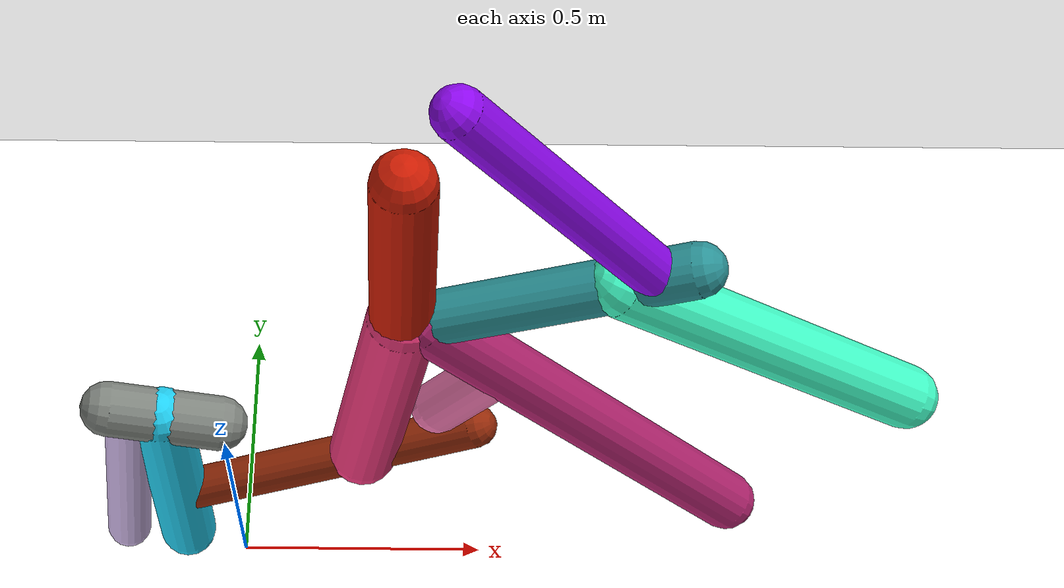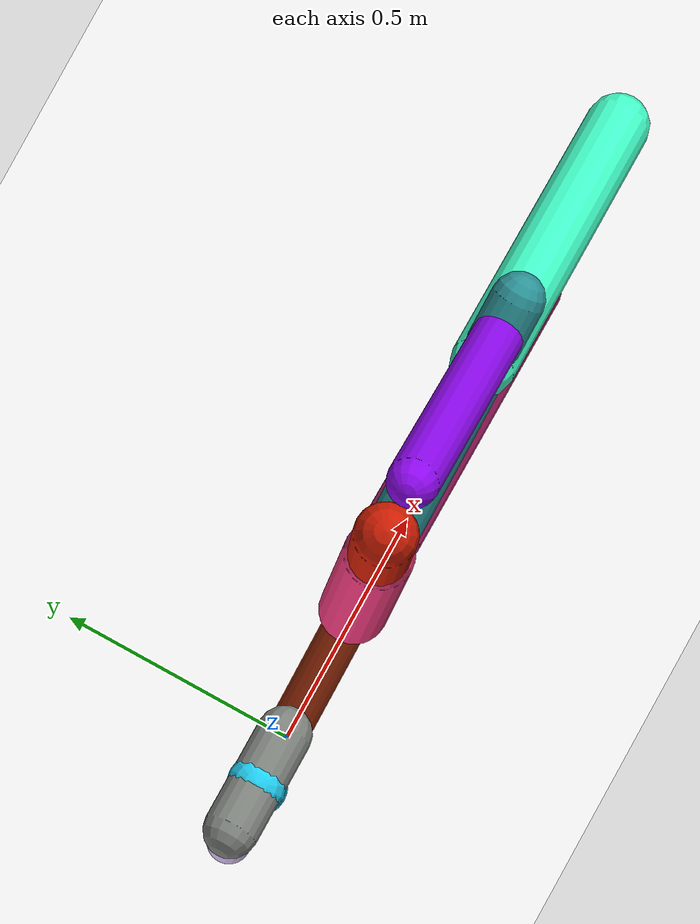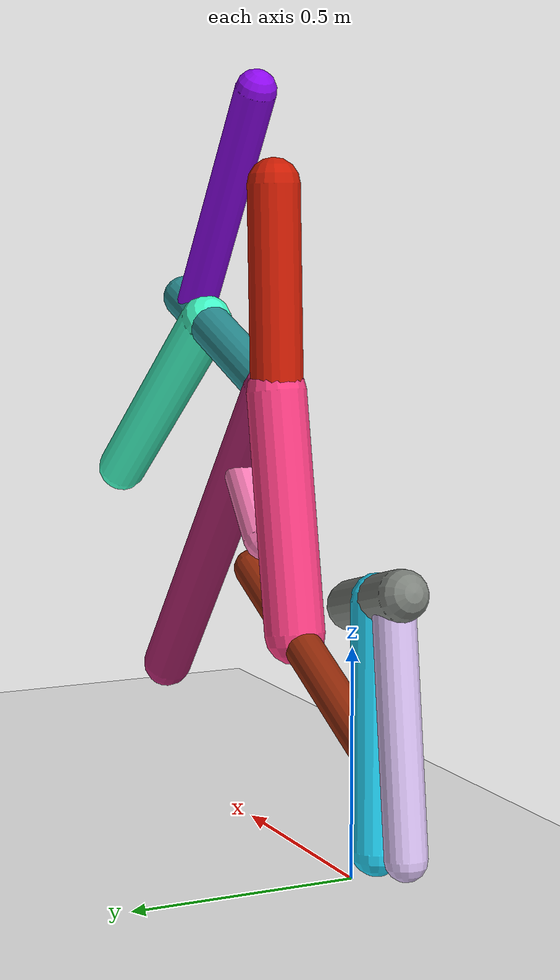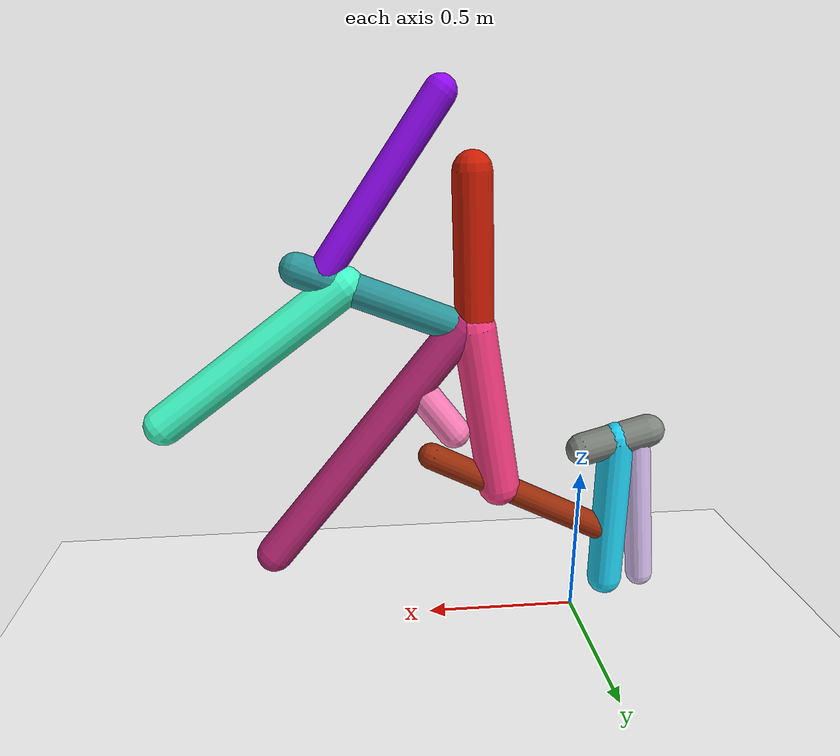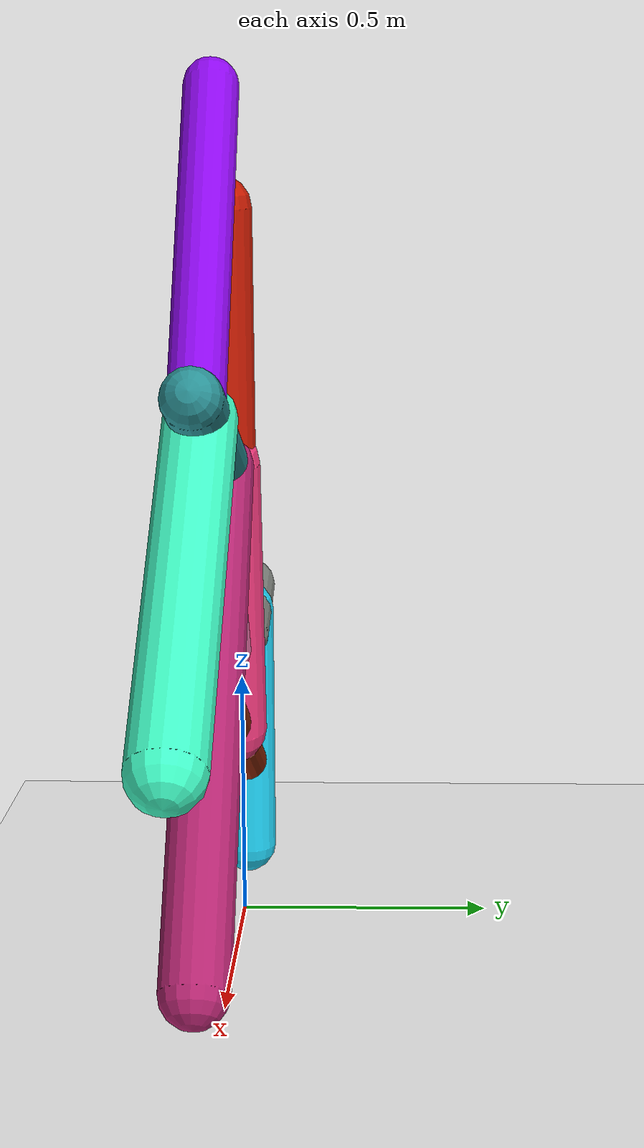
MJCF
<mujoco model="morphology">
  <option timestep="0.01"/>
  <default>
    <default class="/"/>
    <default class="0/"/>
    <default class="0/1/"/>
    <default class="0/2/"/>
    <default class="0/2/3/"/>
    <default class="0/2/3/4/"/>
    <default class="0/2/3/4/5/"/>
    <default class="0/2/3/4/6/"/>
    <default class="0/2/3/4/6/7/"/>
    <default class="0/2/3/4/6/8/"/>
    <default class="0/2/3/4/6/9/"/>
    <default class="0/2/3/4/6/9/10/"/>
  </default>
  <asset>
    <texture name="texplane" type="2d" builtin="checker" rgb1="0.10000000000000001 0.20000000000000001 0.29999999999999999" rgb2="0.20000000000000001 0.29999999999999999 0.40000000000000002" width="300" height="300"/>
    <material name="MatPlane" class="/" texture="texplane" texrepeat="20 20" specular="1" shininess="1" reflectance="0.5"/>
  </asset>
  <worldbody>
    <light name="//unnamed_light_0" class="/" directional="true" pos="0 0 1.5" dir="0 0 -1.3" cutoff="100" exponent="1" diffuse="1 1 1" specular="0.10000000000000001 0.10000000000000001 0.10000000000000001"/>
    <geom name="ground" class="/" type="plane" size="15 15 0.5" material="MatPlane" rgba="1 1 1 1"/>
    <site name="body" class="/" size="9.9999999999999995e-07 9.9999999999999995e-07 9.9999999999999995e-07" pos="0 0 0.59008223414421079"/>
    <body pos="0 0 0.59008223414421079" name="0/">
      <joint name="0/rootx/" class="/" type="slide" axis="1 0 0" limited="false" stiffness="0" armature="0" damping="0"/>
      <joint name="0/rootz/" class="/" type="slide" axis="0 0 1" limited="false" stiffness="0" armature="0" damping="0"/>
      <joint name="0/rooty/" class="/" type="hinge" axis="0 1 0" limited="false" stiffness="0" armature="0" damping="0"/>
      <geom name="0/geom" class="0/" type="capsule" contype="1" conaffinity="1" condim="3" size="0.05439879221625514" rgba="0.4978577154510232 0.5175931481227839 0.49442814713776151 1" friction="0.59999999999999998 0.10000000000000001 0.10000000000000001" fromto="0 0 0 -0.21179787036536135 0 0.057348541973957001"/>
      <site name="0/end0" class="0/" size="0.0050000000000000001" pos="-0.21179787036536135 0 0.057348541973957001"/>
      <site name="0/attach1" class="0/" size="9.9999999999999995e-07 9.9999999999999995e-07 9.9999999999999995e-07" pos="-0.1749782526602188 0 0.047378888418017594"/>
      <body pos="-0.1749782526602188 0 0.047378888418017594" name="0/1/">
        <joint name="0/1/joint/" class="0/" type="hinge" axis="0 1 0" limited="true" range="-46.68008261470797 46.68008261470797"/>
        <geom name="0/1/geom" class="0/1/" type="capsule" contype="1" conaffinity="1" condim="3" size="0.045160707131435079" rgba="0.84321357290336241 0.74760903871629514 0.94644064461166533 1" friction="0.59999999999999998 0.10000000000000001 0.10000000000000001" fromto="0 0 0 -0.063135824069716739 0 -0.52558585891062348"/>
        <site name="0/1/end1" class="0/1/" size="0.0050000000000000001" pos="-0.063135824069716739 0 -0.52558585891062348"/>
      </body>
      <site name="0/attach2" class="0/" size="9.9999999999999995e-07 9.9999999999999995e-07 9.9999999999999995e-07" pos="-0.1108444004934996 0 0.030013355390749879"/>
      <body pos="-0.1108444004934996 0 0.030013355390749879" name="0/2/">
        <geom name="0/2/geom" class="0/2/" type="capsule" contype="1" conaffinity="1" condim="3" size="0.057503516996352214" rgba="0.12849375006694708 0.81629648637665164 0.9514545120831821 1" friction="0.59999999999999998 0.10000000000000001 0.10000000000000001" fromto="0 0 0 -0.0031298385133868845 0 -0.52009557898347403"/>
        <site name="0/2/end2" class="0/2/" size="0.0050000000000000001" pos="-0.0031298385133868845 0 -0.52009557898347403"/>
        <site name="0/2/attach3" class="0/2/" size="9.9999999999999995e-07 9.9999999999999995e-07 9.9999999999999995e-07" pos="-0.0020426715071554832 0 -0.33943745520513807"/>
        <body pos="-0.0020426715071554832 0 -0.33943745520513807" name="0/2/3/">
          <joint name="0/2/3/joint/" class="0/2/" type="hinge" axis="0 1 0" limited="true" range="-36.798638878406784 36.798638878406784"/>
          <geom name="0/2/3/geom" class="0/2/3/" type="capsule" contype="1" conaffinity="1" condim="3" size="0.042772069256013318" rgba="0.59328941323530104 0.16818728966853902 0.039429864697982708 1" friction="0.59999999999999998 0.10000000000000001 0.10000000000000001" fromto="0 0 0 0.61123241217308433 0 0.30777798835995895"/>
          <site name="0/2/3/end3" class="0/2/3/" size="0.0050000000000000001" pos="0.61123241217308433 0 0.30777798835995895"/>
          <site name="0/2/3/attach4" class="0/2/3/" size="9.9999999999999995e-07 9.9999999999999995e-07 9.9999999999999995e-07" pos="0.38725922796476192 0 0.19499925688344202"/>
          <body pos="0.38725922796476192 0 0.19499925688344202" name="0/2/3/4/">
            <joint name="0/2/3/4/joint/" class="0/2/3/" type="hinge" axis="0 1 0" limited="true" range="-58.063390243085649 58.063390243085649"/>
            <geom name="0/2/3/4/geom" class="0/2/3/4/" type="capsule" contype="1" conaffinity="1" condim="3" size="0.068054264554038638" rgba="0.97534898312116702 0.2373120819498048 0.50835002124555517 1" friction="0.59999999999999998 0.10000000000000001 0.10000000000000001" fromto="0 0 0 0.096869229805626178 0 0.53032772847578125"/>
            <site name="0/2/3/4/end4" class="0/2/3/4/" size="0.0050000000000000001" pos="0.096869229805626178 0 0.53032772847578125"/>
            <site name="0/2/3/4/attach5" class="0/2/3/4/" size="9.9999999999999995e-07 9.9999999999999995e-07 9.9999999999999995e-07" pos="0.094322629546242764 0 0.51638591502681952"/>
            <body pos="0.094322629546242764 0 0.51638591502681952" name="0/2/3/4/5/">
              <joint name="0/2/3/4/5/joint/" class="0/2/3/4/" type="hinge" axis="0 1 0" limited="true" range="-63.15149105410562 63.15149105410562"/>
              <geom name="0/2/3/4/5/geom" class="0/2/3/4/5/" type="capsule" contype="1" conaffinity="1" condim="3" size="0.059809775176831455" rgba="0.80372659179714268 0.11277161069621378 0.015769652579262772 1" friction="0.59999999999999998 0.10000000000000001 0.10000000000000001" fromto="0 0 0 0.019631039706016984 0 0.47168114511419423"/>
              <site name="0/2/3/4/5/end5" class="0/2/3/4/5/" size="0.0050000000000000001" pos="0.019631039706016984 0 0.47168114511419423"/>
            </body>
            <site name="0/2/3/4/attach6" class="0/2/3/4/" size="9.9999999999999995e-07 9.9999999999999995e-07 9.9999999999999995e-07" pos="0.094457220255892871 0 0.51712275566719534"/>
            <body pos="0.094457220255892871 0 0.51712275566719534" name="0/2/3/4/6/">
              <joint name="0/2/3/4/6/joint/" class="0/2/3/4/" type="hinge" axis="0 1 0" limited="true" range="-48.217419555650579 48.217419555650579"/>
              <geom name="0/2/3/4/6/geom" class="0/2/3/4/6/" type="capsule" contype="1" conaffinity="1" condim="3" size="0.051200887657881444" rgba="0.16897343438477164 0.57575515601108185 0.59341849831494309 1" friction="0.59999999999999998 0.10000000000000001 0.10000000000000001" fromto="0 0 0 0.52540555390170773 0 0.20149504637377502"/>
              <site name="0/2/3/4/6/end6" class="0/2/3/4/6/" size="0.0050000000000000001" pos="0.52540555390170773 0 0.20149504637377502"/>
              <site name="0/2/3/4/6/attach7" class="0/2/3/4/6/" size="9.9999999999999995e-07 9.9999999999999995e-07 9.9999999999999995e-07" pos="0.45893600446375371 0 0.1760037190610263"/>
              <body pos="0.45893600446375371 0 0.1760037190610263" name="0/2/3/4/6/7/">
                <geom name="0/2/3/4/6/7/geom" class="0/2/3/4/6/7/" type="capsule" contype="1" conaffinity="1" condim="3" size="0.047975890357939671" rgba="0.55993788790664689 0.030918181652326071 0.93850057299159784 1" friction="0.59999999999999998 0.10000000000000001 0.10000000000000001" fromto="0 0 0 -0.34583703111789516 0 0.50319203303769999"/>
                <site name="0/2/3/4/6/7/end7" class="0/2/3/4/6/7/" size="0.0050000000000000001" pos="-0.34583703111789516 0 0.50319203303769999"/>
              </body>
              <site name="0/2/3/4/6/attach8" class="0/2/3/4/6/" size="9.9999999999999995e-07 9.9999999999999995e-07 9.9999999999999995e-07" pos="0.39234894579105523 0 0.15046732650576469"/>
              <body pos="0.39234894579105523 0 0.15046732650576469" name="0/2/3/4/6/8/">
                <joint name="0/2/3/4/6/8/joint/" class="0/2/3/4/6/" type="hinge" axis="0 1 0" limited="true" range="-68.167670074690179 68.167670074690179"/>
                <geom name="0/2/3/4/6/8/geom" class="0/2/3/4/6/8/" type="capsule" contype="1" conaffinity="1" condim="3" size="0.061813735991877262" rgba="0.25715299649482726 0.99486395393294103 0.7829345149191197 1" friction="0.59999999999999998 0.10000000000000001 0.10000000000000001" fromto="0 0 0 0.5569929307629875 0 -0.41582308309380372"/>
                <site name="0/2/3/4/6/8/end8" class="0/2/3/4/6/8/" size="0.0050000000000000001" pos="0.5569929307629875 0 -0.41582308309380372"/>
              </body>
              <site name="0/2/3/4/6/attach9" class="0/2/3/4/6/" size="9.9999999999999995e-07 9.9999999999999995e-07 9.9999999999999995e-07" pos="0.040409055779708707 0 0.015497027977317701"/>
              <body pos="0.040409055779708707 0 0.015497027977317701" name="0/2/3/4/6/9/">
                <geom name="0/2/3/4/6/9/geom" class="0/2/3/4/6/9/" type="capsule" contype="1" conaffinity="1" condim="3" size="0.059533808512552175" rgba="0.71147327955850592 0.14669198253973159 0.44413149320858603 1" friction="0.59999999999999998 0.10000000000000001 0.10000000000000001" fromto="0 0 0 0.60318991465670568 0 -0.74666697950009864"/>
                <site name="0/2/3/4/6/9/end9" class="0/2/3/4/6/9/" size="0.0050000000000000001" pos="0.60318991465670568 0 -0.74666697950009864"/>
                <site name="0/2/3/4/6/9/attach10" class="0/2/3/4/6/9/" size="9.9999999999999995e-07 9.9999999999999995e-07 9.9999999999999995e-07" pos="0.14258613682081203 0 -0.17650222179058767"/>
                <body pos="0.14258613682081203 0 -0.17650222179058767" name="0/2/3/4/6/9/10/">
                  <joint name="0/2/3/4/6/9/10/joint/" class="0/2/3/4/6/9/" type="hinge" axis="0 1 0" limited="true" range="-59.473255183168483 59.473255183168483"/>
                  <geom name="0/2/3/4/6/9/10/geom" class="0/2/3/4/6/9/10/" type="capsule" contype="1" conaffinity="1" condim="3" size="0.051961030815009607" rgba="0.99986170274809993 0.50105662462313272 0.73263998574952149 1" friction="0.59999999999999998 0.10000000000000001 0.10000000000000001" fromto="0 0 0 -0.12495920757879497 0 -0.16259603530196054"/>
                  <site name="0/2/3/4/6/9/10/end10" class="0/2/3/4/6/9/10/" size="0.0050000000000000001" pos="-0.12495920757879497 0 -0.16259603530196054"/>
                </body>
              </body>
            </body>
          </body>
        </body>
      </body>
      <camera name="0/side" class="0/" mode="trackcom" pos="0.40000000000000002 -4 0.20000000000000001" quat="0.70699999999999996 0.70699999999999996 0 0"/>
    </body>
  </worldbody>
  <actuator>
    <motor name="0/1/motor" class="0/1/" ctrllimited="true" ctrlrange="-1 1" gear="68" joint="0/1/joint/"/>
    <motor name="0/2/3/motor" class="0/2/3/" ctrllimited="true" ctrlrange="-1 1" gear="71" joint="0/2/3/joint/"/>
    <motor name="0/2/3/4/motor" class="0/2/3/4/" ctrllimited="true" ctrlrange="-1 1" gear="81" joint="0/2/3/4/joint/"/>
    <motor name="0/2/3/4/5/motor" class="0/2/3/4/5/" ctrllimited="true" ctrlrange="-1 1" gear="50" joint="0/2/3/4/5/joint/"/>
    <motor name="0/2/3/4/6/motor" class="0/2/3/4/6/" ctrllimited="true" ctrlrange="-1 1" gear="53" joint="0/2/3/4/6/joint/"/>
    <motor name="0/2/3/4/6/8/motor" class="0/2/3/4/6/8/" ctrllimited="true" ctrlrange="-1 1" gear="76" joint="0/2/3/4/6/8/joint/"/>
    <motor name="0/2/3/4/6/9/10/motor" class="0/2/3/4/6/9/10/" ctrllimited="true" ctrlrange="-1 1" gear="79" joint="0/2/3/4/6/9/10/joint/"/>
  </actuator>
  <sensor>
    <subtreelinvel name="velocity" body="0/"/>
  </sensor>
</mujoco>
